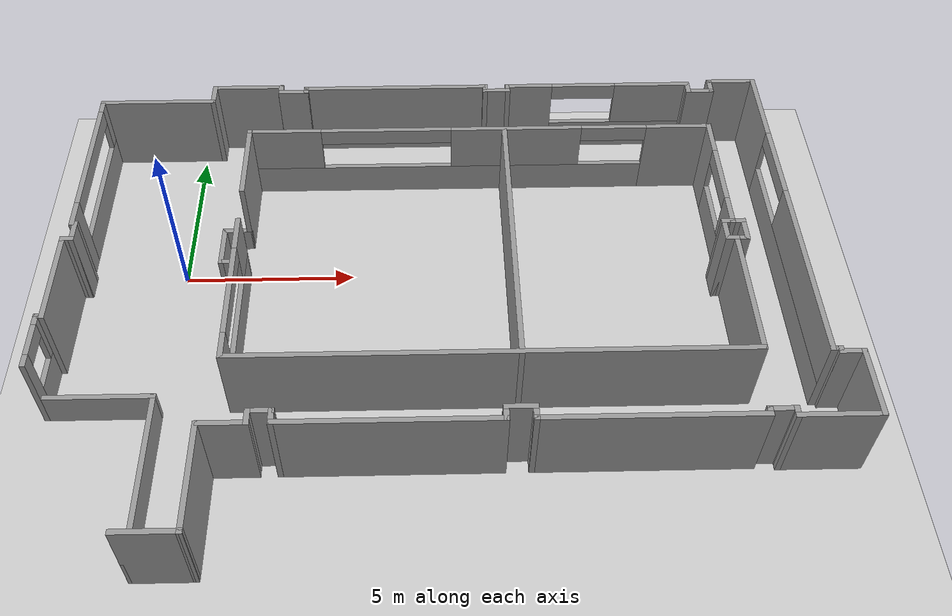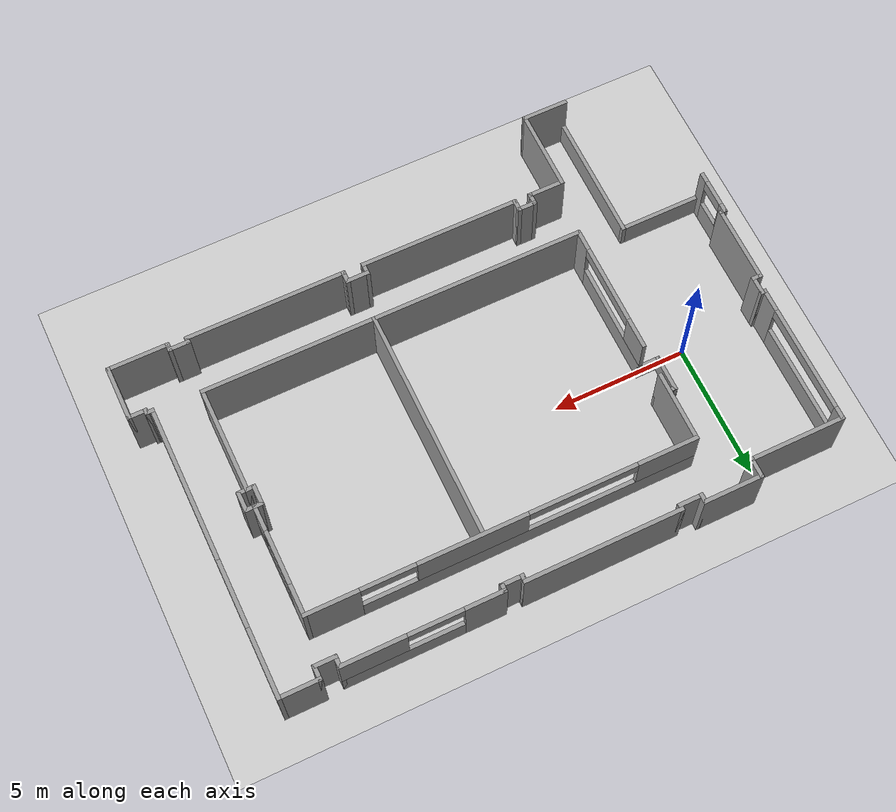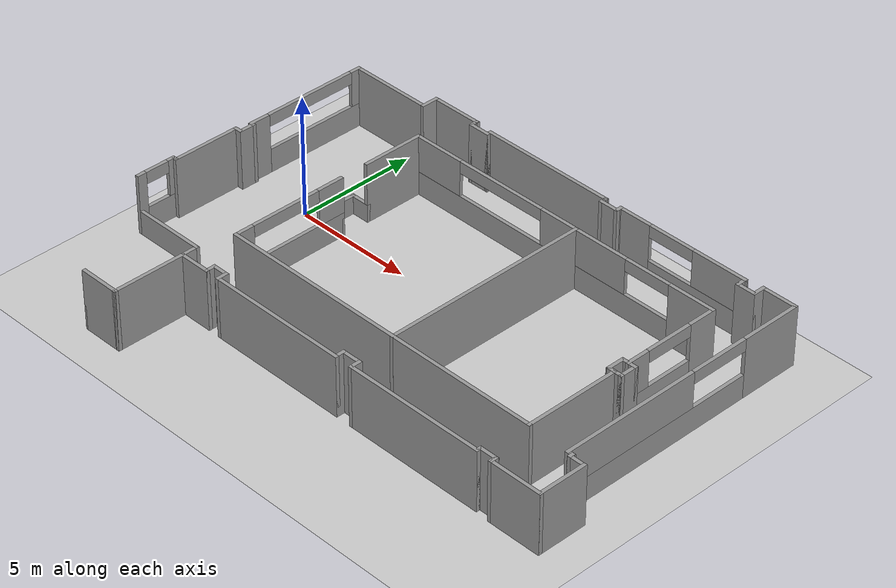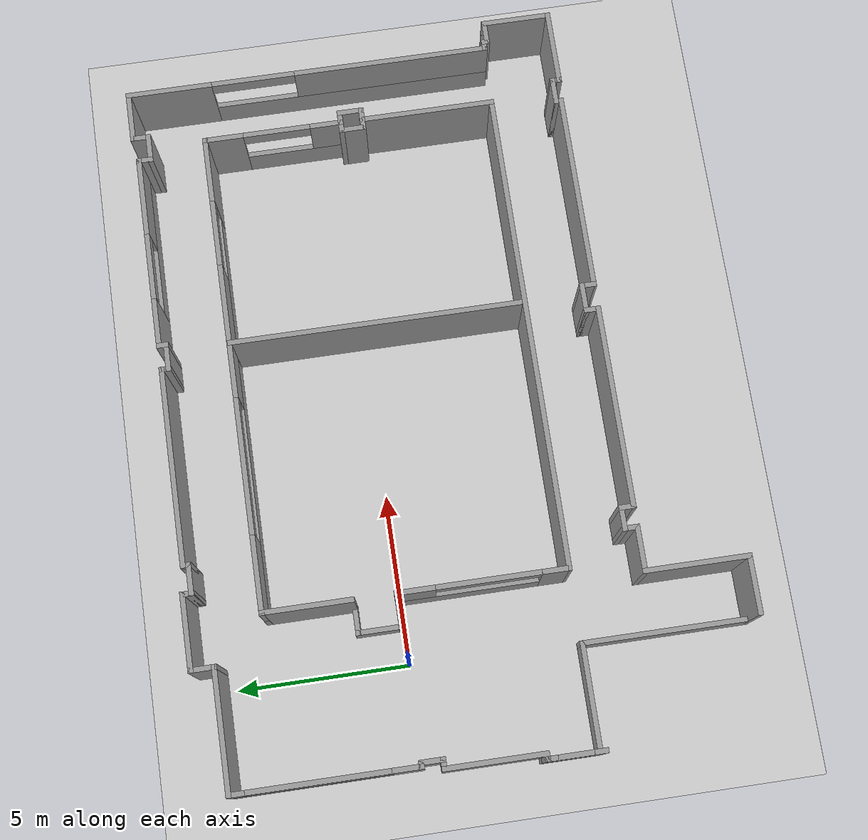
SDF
<sdf version="1.7">
 <world name="default">
  <light name="sun" type="directional">
   <pose>0 0 10 0 -0 0</pose>
   <diffuse>0.8 0.8 0.8 1</diffuse>
   <specular>0.2 0.2 0.2 1</specular>
   <attenuation>
    <range>1000</range>
    <constant>0.9</constant>
    <linear>0.01</linear>
    <quadratic>0.001</quadratic>
   </attenuation>
   <direction>-0.5 0.1 -0.9</direction>
   <spot><inner_angle>0</inner_angle><outer_angle>0</outer_angle><falloff>0</falloff></spot>
  </light>
  <model name="ground_plane">
   <static>1</static>
   <link name="link">
    <collision name="collision">
     <geometry><plane><normal>0 0 1</normal><size>100 100</size></plane></geometry>
     <surface>
      <contact><collide_bitmask>65535</collide_bitmask></contact>
      <friction><ode><mu>100</mu><mu2>50</mu2></ode></friction>
     </surface>
    </collision>
    <visual name="visual">
     <cast_shadows>0</cast_shadows>
     <geometry><plane><normal>0 0 1</normal><size>100 100</size></plane></geometry>
     <material>
      <script><uri>file://media/materials/scripts/gazebo.material</uri><name>Gazebo/Grey</name></script>
     </material>
    </visual>
   </link>
  </model>
  <gravity>0 0 -9.8</gravity>
  <magnetic_field>6e-06 2.3e-05 -4.2e-05</magnetic_field>
  <atmosphere type="adiabatic"/>
  <physics type="ode">
   <max_step_size>0.001</max_step_size>
   <real_time_factor>1</real_time_factor>
   <real_time_update_rate>1000</real_time_update_rate>
   <simbody><max_transient_velocity>0.0</max_transient_velocity></simbody>
  </physics>
  <scene><ambient>0.4 0.4 0.4 1</ambient><background>0.7 0.7 0.7 1</background><shadows>1</shadows></scene>
  <spherical_coordinates>
   <surface_model>EARTH_WGS84</surface_model>
   <latitude_deg>0</latitude_deg>
   <longitude_deg>0</longitude_deg>
   <elevation>0</elevation>
   <heading_deg>0</heading_deg>
  </spherical_coordinates>
  <model name="Meam_Closed_Doors">
   <pose>7.67766 -1.91407 0 0 -0 0</pose>
   <link name="Wall_101">
    <collision name="Wall_101_Collision">
     <geometry><box><size>0.4 0.15 2.5</size></box></geometry>
     <pose>0 0 1.25 0 -0 0</pose>
    </collision>
    <visual name="Wall_101_Visual">
     <pose>0 0 1.25 0 -0 0</pose>
     <geometry><box><size>0.4 0.15 2.5</size></box></geometry>
     <material>
      <script><uri>file://media/materials/scripts/gazebo.material</uri><name>Gazebo/Grey</name></script>
      <ambient>1 1 1 1</ambient>
     </material>
     <meta><layer>0</layer></meta>
    </visual>
    <pose>-10.6 1.37501 0 0 -0 0</pose>
   </link>
   <link name="Wall_103">
    <collision name="Wall_103_Collision">
     <geometry><box><size>0.75 0.15 2.5</size></box></geometry>
     <pose>0 0 1.25 0 -0 0</pose>
    </collision>
    <visual name="Wall_103_Visual">
     <pose>0 0 1.25 0 -0 0</pose>
     <geometry><box><size>0.75 0.15 2.5</size></box></geometry>
     <material>
      <script><uri>file://media/materials/scripts/gazebo.material</uri><name>Gazebo/Grey</name></script>
      <ambient>1 1 1 1</ambient>
     </material>
     <meta><layer>0</layer></meta>
    </visual>
    <pose>-10.475 1.67501 0 0 -0 1.5708</pose>
   </link>
   <link name="Wall_104">
    <collision name="Wall_104_Collision">
     <geometry><box><size>0.25 0.15 2.5</size></box></geometry>
     <pose>0 0 1.25 0 -0 0</pose>
    </collision>
    <visual name="Wall_104_Visual">
     <pose>0 0 1.25 0 -0 0</pose>
     <geometry><box><size>0.25 0.15 2.5</size></box></geometry>
     <material>
      <script><uri>file://media/materials/scripts/gazebo.material</uri><name>Gazebo/Grey</name></script>
      <ambient>1 1 1 1</ambient>
     </material>
     <meta><layer>0</layer></meta>
    </visual>
    <pose>-10.525 1.97501 0 0 -0 3.14159</pose>
   </link>
   <link name="Wall_126">
    <collision name="Wall_126_Collision">
     <geometry><box><size>0.25 0.15 2.5</size></box></geometry>
     <pose>0 0 1.25 0 -0 0</pose>
    </collision>
    <visual name="Wall_126_Visual">
     <pose>0 0 1.25 0 -0 0</pose>
     <geometry><box><size>0.25 0.15 2.5</size></box></geometry>
     <material>
      <script><uri>file://media/materials/scripts/gazebo.material</uri><name>Gazebo/Grey</name></script>
      <ambient>1 1 1 1</ambient>
     </material>
     <meta><layer>0</layer></meta>
    </visual>
    <pose>-10.525 1.97501 0 0 -0 3.14159</pose>
   </link>
   <link name="Wall_127">
    <pose>-10.575 4.60001 0 0 -0 1.5708</pose>
    <visual name="Wall_127_Visual_0">
     <pose>-2.25439 0 1.25 0 -0 0</pose>
     <geometry><box><size>0.891225 0.15 2.5</size></box></geometry>
     <material>
      <script><uri>file://media/materials/scripts/gazebo.material</uri><name>Gazebo/Grey</name></script>
      <ambient>1 1 1 1</ambient>
     </material>
     <meta><layer>0</layer></meta>
    </visual>
    <collision name="Wall_127_Collision_0">
     <geometry><box><size>0.891225 0.15 2.5</size></box></geometry>
     <pose>-2.25439 0 1.25 0 -0 0</pose>
    </collision>
    <visual name="Wall_127_Visual_1">
     <pose>0.445612 0 0.5 0 -0 0</pose>
     <geometry><box><size>4.50877 0.15 1</size></box></geometry>
     <material>
      <script><uri>file://media/materials/scripts/gazebo.material</uri><name>Gazebo/Grey</name></script>
      <ambient>1 1 1 1</ambient>
     </material>
     <meta><layer>0</layer></meta>
    </visual>
    <collision name="Wall_127_Collision_1">
     <geometry><box><size>4.50877 0.15 1</size></box></geometry>
     <pose>0.445612 0 0.5 0 -0 0</pose>
    </collision>
    <visual name="Wall_127_Visual_2">
     <pose>2.44561 0 1.75 0 -0 0</pose>
     <geometry><box><size>0.508775 0.15 1.5</size></box></geometry>
     <material>
      <script><uri>file://media/materials/scripts/gazebo.material</uri><name>Gazebo/Grey</name></script>
      <ambient>1 1 1 1</ambient>
     </material>
     <meta><layer>0</layer></meta>
    </visual>
    <collision name="Wall_127_Collision_2">
     <geometry><box><size>0.508775 0.15 1.5</size></box></geometry>
     <pose>2.44561 0 1.75 0 -0 0</pose>
    </collision>
    <visual name="Wall_127_Visual_3">
     <pose>0.191225 0 2.25 0 -0 0</pose>
     <geometry><box><size>4 0.15 0.5</size></box></geometry>
     <material>
      <script><uri>file://media/materials/scripts/gazebo.material</uri><name>Gazebo/Grey</name></script>
      <ambient>1 1 1 1</ambient>
     </material>
     <meta><layer>0</layer></meta>
    </visual>
    <collision name="Wall_127_Collision_3">
     <geometry><box><size>4 0.15 0.5</size></box></geometry>
     <pose>0.191225 0 2.25 0 -0 0</pose>
    </collision>
   </link>
   <link name="Wall_130">
    <collision name="Wall_130_Collision">
     <geometry><box><size>3.6 0.15 2.5</size></box></geometry>
     <pose>0 0 1.25 0 -0 0</pose>
    </collision>
    <visual name="Wall_130_Visual">
     <pose>0 0 1.25 0 -0 0</pose>
     <geometry><box><size>3.6 0.15 2.5</size></box></geometry>
     <material>
      <script><uri>file://media/materials/scripts/gazebo.material</uri><name>Gazebo/Grey</name></script>
      <ambient>1 1 1 1</ambient>
     </material>
     <meta><layer>0</layer></meta>
    </visual>
    <pose>-8.85 7.22501 0 0 -0 0</pose>
   </link>
   <link name="Wall_135">
    <collision name="Wall_135_Collision">
     <geometry><box><size>0.8 0.15 2.5</size></box></geometry>
     <pose>0 0 1.25 0 -0 0</pose>
    </collision>
    <visual name="Wall_135_Visual">
     <pose>0 0 1.25 0 -0 0</pose>
     <geometry><box><size>0.8 0.15 2.5</size></box></geometry>
     <material>
      <script><uri>file://media/materials/scripts/gazebo.material</uri><name>Gazebo/Grey</name></script>
      <ambient>1 1 1 1</ambient>
     </material>
     <meta><layer>0</layer></meta>
    </visual>
    <pose>-7.125 7.55 0 0 -0 1.5708</pose>
   </link>
   <link name="Wall_137">
    <collision name="Wall_137_Collision">
     <geometry><box><size>2.25 0.15 2.5</size></box></geometry>
     <pose>0 0 1.25 0 -0 0</pose>
    </collision>
    <visual name="Wall_137_Visual">
     <pose>0 0 1.25 0 -0 0</pose>
     <geometry><box><size>2.25 0.15 2.5</size></box></geometry>
     <material>
      <script><uri>file://media/materials/scripts/gazebo.material</uri><name>Gazebo/Grey</name></script>
      <ambient>1 1 1 1</ambient>
     </material>
     <meta><layer>0</layer></meta>
    </visual>
    <pose>-6.075 7.87501 0 0 -0 0</pose>
   </link>
   <link name="Wall_141">
    <collision name="Wall_141_Collision">
     <geometry><box><size>0.4 0.15 2.5</size></box></geometry>
     <pose>0 0 1.25 0 -0 0</pose>
    </collision>
    <visual name="Wall_141_Visual">
     <pose>0 0 1.25 0 -0 0</pose>
     <geometry><box><size>0.4 0.15 2.5</size></box></geometry>
     <material>
      <script><uri>file://media/materials/scripts/gazebo.material</uri><name>Gazebo/Grey</name></script>
      <ambient>1 1 1 1</ambient>
     </material>
     <meta><layer>0</layer></meta>
    </visual>
    <pose>-5.025 7.75001 0 0 -0 -1.5708</pose>
   </link>
   <link name="Wall_143">
    <collision name="Wall_143_Collision">
     <geometry><box><size>0.95 0.15 2.5</size></box></geometry>
     <pose>0 0 1.25 0 -0 0</pose>
    </collision>
    <visual name="Wall_143_Visual">
     <pose>0 0 1.25 0 -0 0</pose>
     <geometry><box><size>0.95 0.15 2.5</size></box></geometry>
     <material>
      <script><uri>file://media/materials/scripts/gazebo.material</uri><name>Gazebo/Grey</name></script>
      <ambient>1 1 1 1</ambient>
     </material>
     <meta><layer>0</layer></meta>
    </visual>
    <pose>-4.625 7.62501 0 0 -0 0</pose>
   </link>
   <link name="Wall_147">
    <collision name="Wall_147_Collision">
     <geometry><box><size>0.3 0.15 2.5</size></box></geometry>
     <pose>0 0 1.25 0 -0 0</pose>
    </collision>
    <visual name="Wall_147_Visual">
     <pose>0 0 1.25 0 -0 0</pose>
     <geometry><box><size>0.3 0.15 2.5</size></box></geometry>
     <material>
      <script><uri>file://media/materials/scripts/gazebo.material</uri><name>Gazebo/Grey</name></script>
      <ambient>1 1 1 1</ambient>
     </material>
     <meta><layer>0</layer></meta>
    </visual>
    <pose>-4.225 7.70001 0 0 -0 1.5708</pose>
   </link>
   <link name="Wall_151">
    <collision name="Wall_151_Collision">
     <geometry><box><size>0.3 0.15 2.5</size></box></geometry>
     <pose>0 0 1.25 0 -0 0</pose>
    </collision>
    <visual name="Wall_151_Visual">
     <pose>0 0 1.25 0 -0 0</pose>
     <geometry><box><size>0.3 0.15 2.5</size></box></geometry>
     <material>
      <script><uri>file://media/materials/scripts/gazebo.material</uri><name>Gazebo/Grey</name></script>
      <ambient>1 1 1 1</ambient>
     </material>
     <meta><layer>0</layer></meta>
    </visual>
    <pose>-4.225 7.70001 0 0 -0 1.5708</pose>
   </link>
   <link name="Wall_152">
    <collision name="Wall_152_Collision">
     <geometry><box><size>5.85 0.15 2.5</size></box></geometry>
     <pose>0 0 1.25 0 -0 0</pose>
    </collision>
    <visual name="Wall_152_Visual">
     <pose>0 0 1.25 0 -0 0</pose>
     <geometry><box><size>5.85 0.15 2.5</size></box></geometry>
     <material>
      <script><uri>file://media/materials/scripts/gazebo.material</uri><name>Gazebo/Grey</name></script>
      <ambient>1 1 1 1</ambient>
     </material>
     <meta><layer>0</layer></meta>
    </visual>
    <pose>-1.375 7.77501 0 0 -0 0</pose>
   </link>
   <link name="Wall_154">
    <collision name="Wall_154_Collision">
     <geometry><box><size>0.35 0.15 2.5</size></box></geometry>
     <pose>0 0 1.25 0 -0 0</pose>
    </collision>
    <visual name="Wall_154_Visual">
     <pose>0 0 1.25 0 -0 0</pose>
     <geometry><box><size>0.35 0.15 2.5</size></box></geometry>
     <material>
      <script><uri>file://media/materials/scripts/gazebo.material</uri><name>Gazebo/Grey</name></script>
      <ambient>1 1 1 1</ambient>
     </material>
     <meta><layer>0</layer></meta>
    </visual>
    <pose>1.475 7.675 0 0 -0 -1.5708</pose>
   </link>
   <link name="Wall_157">
    <collision name="Wall_157_Collision">
     <geometry><box><size>0.35 0.15 2.5</size></box></geometry>
     <pose>0 0 1.25 0 -0 0</pose>
    </collision>
    <visual name="Wall_157_Visual">
     <pose>0 0 1.25 0 -0 0</pose>
     <geometry><box><size>0.35 0.15 2.5</size></box></geometry>
     <material>
      <script><uri>file://media/materials/scripts/gazebo.material</uri><name>Gazebo/Grey</name></script>
      <ambient>1 1 1 1</ambient>
     </material>
     <meta><layer>0</layer></meta>
    </visual>
    <pose>1.475 7.675 0 0 -0 -1.5708</pose>
   </link>
   <link name="Wall_158">
    <collision name="Wall_158_Collision">
     <geometry><box><size>0.870393 0.15 2.5</size></box></geometry>
     <pose>0 0 1.25 0 -0 0</pose>
    </collision>
    <visual name="Wall_158_Visual">
     <pose>0 0 1.25 0 -0 0</pose>
     <geometry><box><size>0.870393 0.15 2.5</size></box></geometry>
     <material>
      <script><uri>file://media/materials/scripts/gazebo.material</uri><name>Gazebo/Grey</name></script>
      <ambient>1 1 1 1</ambient>
     </material>
     <meta><layer>0</layer></meta>
    </visual>
    <pose>1.8352 7.57501 0 0 -0 0</pose>
   </link>
   <link name="Wall_167">
    <collision name="Wall_167_Collision">
     <geometry><box><size>0.35 0.15 2.5</size></box></geometry>
     <pose>0 0 1.25 0 -0 0</pose>
    </collision>
    <visual name="Wall_167_Visual">
     <pose>0 0 1.25 0 -0 0</pose>
     <geometry><box><size>0.35 0.15 2.5</size></box></geometry>
     <material>
      <script><uri>file://media/materials/scripts/gazebo.material</uri><name>Gazebo/Grey</name></script>
      <ambient>1 1 1 1</ambient>
     </material>
     <meta><layer>0</layer></meta>
    </visual>
    <pose>2.19539 7.675 0 0 -0 1.5708</pose>
   </link>
   <link name="Wall_169">
    <collision name="Wall_169_Collision">
     <geometry><box><size>0.15 0.15 2.5</size></box></geometry>
     <pose>0 0 1.25 0 -0 0</pose>
    </collision>
    <visual name="Wall_169_Visual">
     <pose>0 0 1.25 0 -0 0</pose>
     <geometry><box><size>0.15 0.15 2.5</size></box></geometry>
     <material>
      <script><uri>file://media/materials/scripts/gazebo.material</uri><name>Gazebo/Grey</name></script>
      <ambient>1 1 1 1</ambient>
     </material>
     <meta><layer>0</layer></meta>
    </visual>
    <pose>2.19539 7.57501 0 0 -0 0</pose>
   </link>
   <link name="Wall_170">
    <collision name="Wall_170_Collision">
     <geometry><box><size>0.35 0.15 2.5</size></box></geometry>
     <pose>0 0 1.25 0 -0 0</pose>
    </collision>
    <visual name="Wall_170_Visual">
     <pose>0 0 1.25 0 -0 0</pose>
     <geometry><box><size>0.35 0.15 2.5</size></box></geometry>
     <material>
      <script><uri>file://media/materials/scripts/gazebo.material</uri><name>Gazebo/Grey</name></script>
      <ambient>1 1 1 1</ambient>
     </material>
     <meta><layer>0</layer></meta>
    </visual>
    <pose>2.19539 7.675 0 0 -0 1.5708</pose>
   </link>
   <link name="Wall_172">
    <collision name="Wall_172_Collision">
     <geometry><box><size>0.35 0.15 2.5</size></box></geometry>
     <pose>0 0 1.25 0 -0 0</pose>
    </collision>
    <visual name="Wall_172_Visual">
     <pose>0 0 1.25 0 -0 0</pose>
     <geometry><box><size>0.35 0.15 2.5</size></box></geometry>
     <material>
      <script><uri>file://media/materials/scripts/gazebo.material</uri><name>Gazebo/Grey</name></script>
      <ambient>1 1 1 1</ambient>
     </material>
     <meta><layer>0</layer></meta>
    </visual>
    <pose>2.19539 7.675 0 0 -0 1.5708</pose>
   </link>
   <link name="Wall_173">
    <pose>5.0704 7.77501 0 0 -0 0</pose>
    <visual name="Wall_173_Visual_0">
     <pose>-2.19873 0 1.25 0 -0 0</pose>
     <geometry><box><size>1.50254 0.15 2.5</size></box></geometry>
     <material>
      <script><uri>file://media/materials/scripts/gazebo.material</uri><name>Gazebo/Grey</name></script>
      <ambient>1 1 1 1</ambient>
     </material>
     <meta><layer>0</layer></meta>
    </visual>
    <collision name="Wall_173_Collision_0">
     <geometry><box><size>1.50254 0.15 2.5</size></box></geometry>
     <pose>-2.19873 0 1.25 0 -0 0</pose>
    </collision>
    <visual name="Wall_173_Visual_1">
     <pose>0.751268 0 0.5 0 -0 0</pose>
     <geometry><box><size>4.39746 0.15 1</size></box></geometry>
     <material>
      <script><uri>file://media/materials/scripts/gazebo.material</uri><name>Gazebo/Grey</name></script>
      <ambient>1 1 1 1</ambient>
     </material>
     <meta><layer>0</layer></meta>
    </visual>
    <collision name="Wall_173_Collision_1">
     <geometry><box><size>4.39746 0.15 1</size></box></geometry>
     <pose>0.751268 0 0.5 0 -0 0</pose>
    </collision>
    <visual name="Wall_173_Visual_2">
     <pose>1.75127 0 1.75 0 -0 0</pose>
     <geometry><box><size>2.39746 0.15 1.5</size></box></geometry>
     <material>
      <script><uri>file://media/materials/scripts/gazebo.material</uri><name>Gazebo/Grey</name></script>
      <ambient>1 1 1 1</ambient>
     </material>
     <meta><layer>0</layer></meta>
    </visual>
    <collision name="Wall_173_Collision_2">
     <geometry><box><size>2.39746 0.15 1.5</size></box></geometry>
     <pose>1.75127 0 1.75 0 -0 0</pose>
    </collision>
    <visual name="Wall_173_Visual_3">
     <pose>-0.447464 0 2.25 0 -0 0</pose>
     <geometry><box><size>2 0.15 0.5</size></box></geometry>
     <material>
      <script><uri>file://media/materials/scripts/gazebo.material</uri><name>Gazebo/Grey</name></script>
      <ambient>1 1 1 1</ambient>
     </material>
     <meta><layer>0</layer></meta>
    </visual>
    <collision name="Wall_173_Collision_3">
     <geometry><box><size>2 0.15 0.5</size></box></geometry>
     <pose>-0.447464 0 2.25 0 -0 0</pose>
    </collision>
   </link>
   <link name="Wall_175">
    <collision name="Wall_175_Collision">
     <geometry><box><size>0.5 0.15 2.5</size></box></geometry>
     <pose>0 0 1.25 0 -0 0</pose>
    </collision>
    <visual name="Wall_175_Visual">
     <pose>0 0 1.25 0 -0 0</pose>
     <geometry><box><size>0.5 0.15 2.5</size></box></geometry>
     <material>
      <script><uri>file://media/materials/scripts/gazebo.material</uri><name>Gazebo/Grey</name></script>
      <ambient>1 1 1 1</ambient>
     </material>
     <meta><layer>0</layer></meta>
    </visual>
    <pose>7.9454 7.60001 0 0 -0 -1.5708</pose>
   </link>
   <link name="Wall_176">
    <collision name="Wall_176_Collision">
     <geometry><box><size>0.875 0.15 2.5</size></box></geometry>
     <pose>0 0 1.25 0 -0 0</pose>
    </collision>
    <visual name="Wall_176_Visual">
     <pose>0 0 1.25 0 -0 0</pose>
     <geometry><box><size>0.875 0.15 2.5</size></box></geometry>
     <material>
      <script><uri>file://media/materials/scripts/gazebo.material</uri><name>Gazebo/Grey</name></script>
      <ambient>1 1 1 1</ambient>
     </material>
     <meta><layer>0</layer></meta>
    </visual>
    <pose>8.30789 7.425 0 0 -0 0</pose>
   </link>
   <link name="Wall_178">
    <collision name="Wall_178_Collision">
     <geometry><box><size>0.6 0.15 2.5</size></box></geometry>
     <pose>0 0 1.25 0 -0 0</pose>
    </collision>
    <visual name="Wall_178_Visual">
     <pose>0 0 1.25 0 -0 0</pose>
     <geometry><box><size>0.6 0.15 2.5</size></box></geometry>
     <material>
      <script><uri>file://media/materials/scripts/gazebo.material</uri><name>Gazebo/Grey</name></script>
      <ambient>1 1 1 1</ambient>
     </material>
     <meta><layer>0</layer></meta>
    </visual>
    <pose>8.67039 7.65001 0 0 -0 1.5708</pose>
   </link>
   <link name="Wall_180">
    <collision name="Wall_180_Collision">
     <geometry><box><size>1.55461 0.15 2.5</size></box></geometry>
     <pose>0 0 1.25 0 -0 0</pose>
    </collision>
    <visual name="Wall_180_Visual">
     <pose>0 0 1.25 0 -0 0</pose>
     <geometry><box><size>1.55461 0.15 2.5</size></box></geometry>
     <material>
      <script><uri>file://media/materials/scripts/gazebo.material</uri><name>Gazebo/Grey</name></script>
      <ambient>1 1 1 1</ambient>
     </material>
     <meta><layer>0</layer></meta>
    </visual>
    <pose>9.3727 7.87501 0 0 -0 0</pose>
   </link>
   <link name="Wall_184">
    <collision name="Wall_184_Collision">
     <geometry><box><size>0.35 0.15 2.5</size></box></geometry>
     <pose>0 0 1.25 0 -0 0</pose>
    </collision>
    <visual name="Wall_184_Visual">
     <pose>0 0 1.25 0 -0 0</pose>
     <geometry><box><size>0.35 0.15 2.5</size></box></geometry>
     <material>
      <script><uri>file://media/materials/scripts/gazebo.material</uri><name>Gazebo/Grey</name></script>
      <ambient>1 1 1 1</ambient>
     </material>
     <meta><layer>0</layer></meta>
    </visual>
    <pose>10.175 -2.92499 0 0 -0 0</pose>
   </link>
   <link name="Wall_186">
    <collision name="Wall_186_Collision">
     <geometry><box><size>0.35 0.15 2.5</size></box></geometry>
     <pose>0 0 1.25 0 -0 0</pose>
    </collision>
    <visual name="Wall_186_Visual">
     <pose>0 0 1.25 0 -0 0</pose>
     <geometry><box><size>0.35 0.15 2.5</size></box></geometry>
     <material>
      <script><uri>file://media/materials/scripts/gazebo.material</uri><name>Gazebo/Grey</name></script>
      <ambient>1 1 1 1</ambient>
     </material>
     <meta><layer>0</layer></meta>
    </visual>
    <pose>10.175 -2.92499 0 0 -0 0</pose>
   </link>
   <link name="Wall_187">
    <collision name="Wall_187_Collision">
     <geometry><box><size>0.25 0.15 2.5</size></box></geometry>
     <pose>0 0 1.25 0 -0 0</pose>
    </collision>
    <visual name="Wall_187_Visual">
     <pose>0 0 1.25 0 -0 0</pose>
     <geometry><box><size>0.25 0.15 2.5</size></box></geometry>
     <material>
      <script><uri>file://media/materials/scripts/gazebo.material</uri><name>Gazebo/Grey</name></script>
      <ambient>1 1 1 1</ambient>
     </material>
     <meta><layer>0</layer></meta>
    </visual>
    <pose>10.275 -2.97499 0 0 -0 -1.5708</pose>
   </link>
   <link name="Wall_188">
    <collision name="Wall_188_Collision">
     <geometry><box><size>0.75 0.15 2.5</size></box></geometry>
     <pose>0 0 1.25 0 -0 0</pose>
    </collision>
    <visual name="Wall_188_Visual">
     <pose>0 0 1.25 0 -0 0</pose>
     <geometry><box><size>0.75 0.15 2.5</size></box></geometry>
     <material>
      <script><uri>file://media/materials/scripts/gazebo.material</uri><name>Gazebo/Grey</name></script>
      <ambient>1 1 1 1</ambient>
     </material>
     <meta><layer>0</layer></meta>
    </visual>
    <pose>10.575 -3.02499 0 0 -0 0</pose>
   </link>
   <link name="Wall_190">
    <collision name="Wall_190_Collision">
     <geometry><box><size>2.1 0.15 2.5</size></box></geometry>
     <pose>0 0 1.25 0 -0 0</pose>
    </collision>
    <visual name="Wall_190_Visual">
     <pose>0 0 1.25 0 -0 0</pose>
     <geometry><box><size>2.1 0.15 2.5</size></box></geometry>
     <material>
      <script><uri>file://media/materials/scripts/gazebo.material</uri><name>Gazebo/Grey</name></script>
      <ambient>1 1 1 1</ambient>
     </material>
     <meta><layer>0</layer></meta>
    </visual>
    <pose>10.875 -3.99999 0 0 -0 -1.5708</pose>
   </link>
   <link name="Wall_192">
    <collision name="Wall_192_Collision">
     <geometry><box><size>2.3 0.15 2.5</size></box></geometry>
     <pose>0 0 1.25 0 -0 0</pose>
    </collision>
    <visual name="Wall_192_Visual">
     <pose>0 0 1.25 0 -0 0</pose>
     <geometry><box><size>2.3 0.15 2.5</size></box></geometry>
     <material>
      <script><uri>file://media/materials/scripts/gazebo.material</uri><name>Gazebo/Grey</name></script>
      <ambient>1 1 1 1</ambient>
     </material>
     <meta><layer>0</layer></meta>
    </visual>
    <pose>9.8 -4.97499 0 0 -0 3.14159</pose>
   </link>
   <link name="Wall_194">
    <collision name="Wall_194_Collision">
     <geometry><box><size>0.35 0.15 2.5</size></box></geometry>
     <pose>0 0 1.25 0 -0 0</pose>
    </collision>
    <visual name="Wall_194_Visual">
     <pose>0 0 1.25 0 -0 0</pose>
     <geometry><box><size>0.35 0.15 2.5</size></box></geometry>
     <material>
      <script><uri>file://media/materials/scripts/gazebo.material</uri><name>Gazebo/Grey</name></script>
      <ambient>1 1 1 1</ambient>
     </material>
     <meta><layer>0</layer></meta>
    </visual>
    <pose>8.725 -4.87499 0 0 -0 1.5708</pose>
   </link>
   <link name="Wall_196">
    <collision name="Wall_196_Collision">
     <geometry><box><size>0.35 0.15 2.5</size></box></geometry>
     <pose>0 0 1.25 0 -0 0</pose>
    </collision>
    <visual name="Wall_196_Visual">
     <pose>0 0 1.25 0 -0 0</pose>
     <geometry><box><size>0.35 0.15 2.5</size></box></geometry>
     <material>
      <script><uri>file://media/materials/scripts/gazebo.material</uri><name>Gazebo/Grey</name></script>
      <ambient>1 1 1 1</ambient>
     </material>
     <meta><layer>0</layer></meta>
    </visual>
    <pose>8.725 -4.87499 0 0 -0 1.5708</pose>
   </link>
   <link name="Wall_197">
    <collision name="Wall_197_Collision">
     <geometry><box><size>0.825 0.15 2.5</size></box></geometry>
     <pose>0 0 1.25 0 -0 0</pose>
    </collision>
    <visual name="Wall_197_Visual">
     <pose>0 0 1.25 0 -0 0</pose>
     <geometry><box><size>0.825 0.15 2.5</size></box></geometry>
     <material>
      <script><uri>file://media/materials/scripts/gazebo.material</uri><name>Gazebo/Grey</name></script>
      <ambient>1 1 1 1</ambient>
     </material>
     <meta><layer>0</layer></meta>
    </visual>
    <pose>8.3875 -4.77499 0 0 -0 3.14159</pose>
   </link>
   <link name="Wall_199">
    <collision name="Wall_199_Collision">
     <geometry><box><size>0.3 0.15 2.5</size></box></geometry>
     <pose>0 0 1.25 0 -0 0</pose>
    </collision>
    <visual name="Wall_199_Visual">
     <pose>0 0 1.25 0 -0 0</pose>
     <geometry><box><size>0.3 0.15 2.5</size></box></geometry>
     <material>
      <script><uri>file://media/materials/scripts/gazebo.material</uri><name>Gazebo/Grey</name></script>
      <ambient>1 1 1 1</ambient>
     </material>
     <meta><layer>0</layer></meta>
    </visual>
    <pose>8.05 -4.84999 0 0 -0 -1.5708</pose>
   </link>
   <link name="Wall_201">
    <collision name="Wall_201_Collision">
     <geometry><box><size>0.3 0.15 2.5</size></box></geometry>
     <pose>0 0 1.25 0 -0 0</pose>
    </collision>
    <visual name="Wall_201_Visual">
     <pose>0 0 1.25 0 -0 0</pose>
     <geometry><box><size>0.3 0.15 2.5</size></box></geometry>
     <material>
      <script><uri>file://media/materials/scripts/gazebo.material</uri><name>Gazebo/Grey</name></script>
      <ambient>1 1 1 1</ambient>
     </material>
     <meta><layer>0</layer></meta>
    </visual>
    <pose>8.05 -4.84999 0 0 -0 -1.5708</pose>
   </link>
   <link name="Wall_202">
    <collision name="Wall_202_Collision">
     <geometry><box><size>5.975 0.15 2.5</size></box></geometry>
     <pose>0 0 1.25 0 -0 0</pose>
    </collision>
    <visual name="Wall_202_Visual">
     <pose>0 0 1.25 0 -0 0</pose>
     <geometry><box><size>5.975 0.15 2.5</size></box></geometry>
     <material>
      <script><uri>file://media/materials/scripts/gazebo.material</uri><name>Gazebo/Grey</name></script>
      <ambient>1 1 1 1</ambient>
     </material>
     <meta><layer>0</layer></meta>
    </visual>
    <pose>5.1375 -4.92499 0 0 -0 3.14159</pose>
   </link>
   <link name="Wall_208">
    <collision name="Wall_208_Collision">
     <geometry><box><size>0.45 0.15 2.5</size></box></geometry>
     <pose>0 0 1.25 0 -0 0</pose>
    </collision>
    <visual name="Wall_208_Visual">
     <pose>0 0 1.25 0 -0 0</pose>
     <geometry><box><size>0.45 0.15 2.5</size></box></geometry>
     <material>
      <script><uri>file://media/materials/scripts/gazebo.material</uri><name>Gazebo/Grey</name></script>
      <ambient>1 1 1 1</ambient>
     </material>
     <meta><layer>0</layer></meta>
    </visual>
    <pose>8.45626 1.69691 0 0 -0 0</pose>
   </link>
   <link name="Wall_210">
    <collision name="Wall_210_Collision">
     <geometry><box><size>0.8 0.15 2.5</size></box></geometry>
     <pose>0 0 1.25 0 -0 0</pose>
    </collision>
    <visual name="Wall_210_Visual">
     <pose>0 0 1.25 0 -0 0</pose>
     <geometry><box><size>0.8 0.15 2.5</size></box></geometry>
     <material>
      <script><uri>file://media/materials/scripts/gazebo.material</uri><name>Gazebo/Grey</name></script>
      <ambient>1 1 1 1</ambient>
     </material>
     <meta><layer>0</layer></meta>
    </visual>
    <pose>8.60626 1.37191 0 0 -0 -1.5708</pose>
   </link>
   <link name="Wall_212">
    <collision name="Wall_212_Collision">
     <geometry><box><size>0.45 0.15 2.5</size></box></geometry>
     <pose>0 0 1.25 0 -0 0</pose>
    </collision>
    <visual name="Wall_212_Visual">
     <pose>0 0 1.25 0 -0 0</pose>
     <geometry><box><size>0.45 0.15 2.5</size></box></geometry>
     <material>
      <script><uri>file://media/materials/scripts/gazebo.material</uri><name>Gazebo/Grey</name></script>
      <ambient>1 1 1 1</ambient>
     </material>
     <meta><layer>0</layer></meta>
    </visual>
    <pose>8.45626 1.04691 0 0 -0 3.14159</pose>
   </link>
   <link name="Wall_214">
    <collision name="Wall_214_Collision">
     <geometry><box><size>4.05 0.15 2.5</size></box></geometry>
     <pose>0 0 1.25 0 -0 0</pose>
    </collision>
    <visual name="Wall_214_Visual">
     <pose>0 0 1.25 0 -0 0</pose>
     <geometry><box><size>4.05 0.15 2.5</size></box></geometry>
     <material>
      <script><uri>file://media/materials/scripts/gazebo.material</uri><name>Gazebo/Grey</name></script>
      <ambient>1 1 1 1</ambient>
     </material>
     <meta><layer>0</layer></meta>
    </visual>
    <pose>8.30626 -0.903093 0 0 -0 -1.5708</pose>
   </link>
   <link name="Wall_216">
    <collision name="Wall_216_Collision">
     <geometry><box><size>14.3 0.15 2.5</size></box></geometry>
     <pose>0 0 1.25 0 -0 0</pose>
    </collision>
    <visual name="Wall_216_Visual">
     <pose>0 0 1.25 0 -0 0</pose>
     <geometry><box><size>14.3 0.15 2.5</size></box></geometry>
     <material>
      <script><uri>file://media/materials/scripts/gazebo.material</uri><name>Gazebo/Grey</name></script>
      <ambient>1 1 1 1</ambient>
     </material>
     <meta><layer>0</layer></meta>
    </visual>
    <pose>1.23126 -2.85309 0 0 -0 3.14159</pose>
   </link>
   <link name="Wall_218">
    <pose>-5.84387 -0.427921 0 0 -0 1.57085</pose>
    <visual name="Wall_218_Visual_0">
     <pose>-2.08106 0 1.25 0 -0 0</pose>
     <geometry><box><size>0.837886 0.15 2.5</size></box></geometry>
     <material>
      <script><uri>file://media/materials/scripts/gazebo.material</uri><name>Gazebo/Grey</name></script>
      <ambient>1 1 1 1</ambient>
     </material>
     <meta><layer>0</layer></meta>
    </visual>
    <collision name="Wall_218_Collision_0">
     <geometry><box><size>0.837886 0.15 2.5</size></box></geometry>
     <pose>-2.08106 0 1.25 0 -0 0</pose>
    </collision>
    <visual name="Wall_218_Visual_1">
     <pose>0.418943 0 0.5 0 -0 0</pose>
     <geometry><box><size>4.16211 0.15 1</size></box></geometry>
     <material>
      <script><uri>file://media/materials/scripts/gazebo.material</uri><name>Gazebo/Grey</name></script>
      <ambient>1 1 1 1</ambient>
     </material>
     <meta><layer>0</layer></meta>
    </visual>
    <collision name="Wall_218_Collision_1">
     <geometry><box><size>4.16211 0.15 1</size></box></geometry>
     <pose>0.418943 0 0.5 0 -0 0</pose>
    </collision>
    <visual name="Wall_218_Visual_2">
     <pose>1.91894 0 1.75 0 -0 0</pose>
     <geometry><box><size>1.16211 0.15 1.5</size></box></geometry>
     <material>
      <script><uri>file://media/materials/scripts/gazebo.material</uri><name>Gazebo/Grey</name></script>
      <ambient>1 1 1 1</ambient>
     </material>
     <meta><layer>0</layer></meta>
    </visual>
    <collision name="Wall_218_Collision_2">
     <geometry><box><size>1.16211 0.15 1.5</size></box></geometry>
     <pose>1.91894 0 1.75 0 -0 0</pose>
    </collision>
    <visual name="Wall_218_Visual_3">
     <pose>-0.162114 0 2.25 0 -0 0</pose>
     <geometry><box><size>3 0.15 0.5</size></box></geometry>
     <material>
      <script><uri>file://media/materials/scripts/gazebo.material</uri><name>Gazebo/Grey</name></script>
      <ambient>1 1 1 1</ambient>
     </material>
     <meta><layer>0</layer></meta>
    </visual>
    <collision name="Wall_218_Collision_3">
     <geometry><box><size>3 0.15 0.5</size></box></geometry>
     <pose>-0.162114 0 2.25 0 -0 0</pose>
    </collision>
   </link>
   <link name="Wall_219">
    <collision name="Wall_219_Collision">
     <geometry><box><size>0.9 0.15 0.75</size></box></geometry>
     <pose>0 0 0.375 0 -0 0</pose>
    </collision>
    <visual name="Wall_219_Visual">
     <pose>0 0 0.375 0 -0 0</pose>
     <geometry><box><size>0.9 0.15 0.75</size></box></geometry>
     <material>
      <script><uri>file://media/materials/scripts/gazebo.material</uri><name>Gazebo/Grey</name></script>
      <ambient>1 1 1 1</ambient>
     </material>
     <meta><layer>0</layer></meta>
    </visual>
    <pose>-6.219 1.99725 0 0 -0 3.14159</pose>
   </link>
   <link name="Wall_221">
    <collision name="Wall_221_Collision">
     <geometry><box><size>1.4 0.15 0.75</size></box></geometry>
     <pose>0 0 0.375 0 -0 0</pose>
    </collision>
    <visual name="Wall_221_Visual">
     <pose>0 0 0.375 0 -0 0</pose>
     <geometry><box><size>1.4 0.15 0.75</size></box></geometry>
     <material>
      <script><uri>file://media/materials/scripts/gazebo.material</uri><name>Gazebo/Grey</name></script>
      <ambient>1 1 1 1</ambient>
     </material>
     <meta><layer>0</layer></meta>
    </visual>
    <pose>-6.594 2.62225 0 0 -0 1.5708</pose>
   </link>
   <link name="Wall_223">
    <collision name="Wall_223_Collision">
     <geometry><box><size>0.9 0.15 0.75</size></box></geometry>
     <pose>0 0 0.375 0 -0 0</pose>
    </collision>
    <visual name="Wall_223_Visual">
     <pose>0 0 0.375 0 -0 0</pose>
     <geometry><box><size>0.9 0.15 0.75</size></box></geometry>
     <material>
      <script><uri>file://media/materials/scripts/gazebo.material</uri><name>Gazebo/Grey</name></script>
      <ambient>1 1 1 1</ambient>
     </material>
     <meta><layer>0</layer></meta>
    </visual>
    <pose>-6.219 3.24725 0 0 -0 0</pose>
   </link>
   <link name="Wall_232">
    <collision name="Wall_232_Collision">
     <geometry><box><size>8.75 0.15 2.5</size></box></geometry>
     <pose>0 0 1.25 0 -0 0</pose>
    </collision>
    <visual name="Wall_232_Visual">
     <pose>0 0 1.25 0 -0 0</pose>
     <geometry><box><size>8.75 0.15 2.5</size></box></geometry>
     <material>
      <script><uri>file://media/materials/scripts/gazebo.material</uri><name>Gazebo/Grey</name></script>
      <ambient>1 1 1 1</ambient>
     </material>
     <meta><layer>0</layer></meta>
    </visual>
    <pose>1.98748 1.44602 0 0 -0 -1.5708</pose>
   </link>
   <link name="Wall_235">
    <collision name="Wall_235_Collision">
     <geometry><box><size>0.4 0.15 2.5</size></box></geometry>
     <pose>0 0 1.25 0 -0 0</pose>
    </collision>
    <visual name="Wall_235_Visual">
     <pose>0 0 1.25 0 -0 0</pose>
     <geometry><box><size>0.4 0.15 2.5</size></box></geometry>
     <material>
      <script><uri>file://media/materials/scripts/gazebo.material</uri><name>Gazebo/Grey</name></script>
      <ambient>1 1 1 1</ambient>
     </material>
     <meta><layer>0</layer></meta>
    </visual>
    <pose>8.18126 1.69691 0 0 -0 3.14159</pose>
   </link>
   <link name="Wall_239">
    <collision name="Wall_239_Collision">
     <geometry><box><size>0.8 0.15 2.5</size></box></geometry>
     <pose>0 0 1.25 0 -0 0</pose>
    </collision>
    <visual name="Wall_239_Visual">
     <pose>0 0 1.25 0 -0 0</pose>
     <geometry><box><size>0.8 0.15 2.5</size></box></geometry>
     <material>
      <script><uri>file://media/materials/scripts/gazebo.material</uri><name>Gazebo/Grey</name></script>
      <ambient>1 1 1 1</ambient>
     </material>
     <meta><layer>0</layer></meta>
    </visual>
    <pose>8.05626 1.37191 0 0 -0 -1.5708</pose>
   </link>
   <link name="Wall_241">
    <collision name="Wall_241_Collision">
     <geometry><box><size>0.4 0.15 2.5</size></box></geometry>
     <pose>0 0 1.25 0 -0 0</pose>
    </collision>
    <visual name="Wall_241_Visual">
     <pose>0 0 1.25 0 -0 0</pose>
     <geometry><box><size>0.4 0.15 2.5</size></box></geometry>
     <material>
      <script><uri>file://media/materials/scripts/gazebo.material</uri><name>Gazebo/Grey</name></script>
      <ambient>1 1 1 1</ambient>
     </material>
     <meta><layer>0</layer></meta>
    </visual>
    <pose>8.18126 1.04691 0 0 -0 0</pose>
   </link>
   <link name="Wall_245">
    <pose>8.30626 3.73082 0 0 -0 -1.5708</pose>
    <visual name="Wall_245_Visual_0">
     <pose>-1.50161 0 1.25 0 -0 0</pose>
     <geometry><box><size>1.21461 0.15 2.5</size></box></geometry>
     <material>
      <script><uri>file://media/materials/scripts/gazebo.material</uri><name>Gazebo/Grey</name></script>
      <ambient>1 1 1 1</ambient>
     </material>
     <meta><layer>0</layer></meta>
    </visual>
    <collision name="Wall_245_Collision_0">
     <geometry><box><size>1.21461 0.15 2.5</size></box></geometry>
     <pose>-1.50161 0 1.25 0 -0 0</pose>
    </collision>
    <visual name="Wall_245_Visual_1">
     <pose>0.607306 0 0.5 0 -0 0</pose>
     <geometry><box><size>3.00322 0.15 1</size></box></geometry>
     <material>
      <script><uri>file://media/materials/scripts/gazebo.material</uri><name>Gazebo/Grey</name></script>
      <ambient>1 1 1 1</ambient>
     </material>
     <meta><layer>0</layer></meta>
    </visual>
    <collision name="Wall_245_Collision_1">
     <geometry><box><size>3.00322 0.15 1</size></box></geometry>
     <pose>0.607306 0 0.5 0 -0 0</pose>
    </collision>
    <visual name="Wall_245_Visual_2">
     <pose>1.60731 0 1.75 0 -0 0</pose>
     <geometry><box><size>1.00322 0.15 1.5</size></box></geometry>
     <material>
      <script><uri>file://media/materials/scripts/gazebo.material</uri><name>Gazebo/Grey</name></script>
      <ambient>1 1 1 1</ambient>
     </material>
     <meta><layer>0</layer></meta>
    </visual>
    <collision name="Wall_245_Collision_2">
     <geometry><box><size>1.00322 0.15 1.5</size></box></geometry>
     <pose>1.60731 0 1.75 0 -0 0</pose>
    </collision>
    <visual name="Wall_245_Visual_3">
     <pose>0.105695 0 2.25 0 -0 0</pose>
     <geometry><box><size>2 0.15 0.5</size></box></geometry>
     <material>
      <script><uri>file://media/materials/scripts/gazebo.material</uri><name>Gazebo/Grey</name></script>
      <ambient>1 1 1 1</ambient>
     </material>
     <meta><layer>0</layer></meta>
    </visual>
    <collision name="Wall_245_Collision_3">
     <geometry><box><size>2 0.15 0.5</size></box></geometry>
     <pose>0.105695 0 2.25 0 -0 0</pose>
    </collision>
   </link>
   <link name="Wall_248">
    <pose>1.23126 5.76474 0 0 -0 3.14159</pose>
    <visual name="Wall_248_Visual_0">
     <pose>-6.14509 0 1.25 0 -0 0</pose>
     <geometry><box><size>2.00982 0.15 2.5</size></box></geometry>
     <material>
      <script><uri>file://media/materials/scripts/gazebo.material</uri><name>Gazebo/Grey</name></script>
      <ambient>1 1 1 1</ambient>
     </material>
     <meta><layer>0</layer></meta>
    </visual>
    <collision name="Wall_248_Collision_0">
     <geometry><box><size>2.00982 0.15 2.5</size></box></geometry>
     <pose>-6.14509 0 1.25 0 -0 0</pose>
    </collision>
    <visual name="Wall_248_Visual_1">
     <pose>1.00491 0 0.5 0 -0 0</pose>
     <geometry><box><size>12.2902 0.15 1</size></box></geometry>
     <material>
      <script><uri>file://media/materials/scripts/gazebo.material</uri><name>Gazebo/Grey</name></script>
      <ambient>1 1 1 1</ambient>
     </material>
     <meta><layer>0</layer></meta>
    </visual>
    <collision name="Wall_248_Collision_1">
     <geometry><box><size>12.2902 0.15 1</size></box></geometry>
     <pose>1.00491 0 0.5 0 -0 0</pose>
    </collision>
    <visual name="Wall_248_Visual_2">
     <pose>-1.12762 0 1.75 0 -0 0</pose>
     <geometry><box><size>4.02511 0.15 1.5</size></box></geometry>
     <material>
      <script><uri>file://media/materials/scripts/gazebo.material</uri><name>Gazebo/Grey</name></script>
      <ambient>1 1 1 1</ambient>
     </material>
     <meta><layer>0</layer></meta>
    </visual>
    <collision name="Wall_248_Collision_2">
     <geometry><box><size>4.02511 0.15 1.5</size></box></geometry>
     <pose>-1.12762 0 1.75 0 -0 0</pose>
    </collision>
    <visual name="Wall_248_Visual_3">
     <pose>6.01747 0 1.75 0 -0 0</pose>
     <geometry><box><size>2.26507 0.15 1.5</size></box></geometry>
     <material>
      <script><uri>file://media/materials/scripts/gazebo.material</uri><name>Gazebo/Grey</name></script>
      <ambient>1 1 1 1</ambient>
     </material>
     <meta><layer>0</layer></meta>
    </visual>
    <collision name="Wall_248_Collision_3">
     <geometry><box><size>2.26507 0.15 1.5</size></box></geometry>
     <pose>6.01747 0 1.75 0 -0 0</pose>
    </collision>
    <visual name="Wall_248_Visual_4">
     <pose>-4.14018 0 2.25 0 -0 0</pose>
     <geometry><box><size>2 0.15 0.5</size></box></geometry>
     <material>
      <script><uri>file://media/materials/scripts/gazebo.material</uri><name>Gazebo/Grey</name></script>
      <ambient>1 1 1 1</ambient>
     </material>
     <meta><layer>0</layer></meta>
    </visual>
    <collision name="Wall_248_Collision_4">
     <geometry><box><size>2 0.15 0.5</size></box></geometry>
     <pose>-4.14018 0 2.25 0 -0 0</pose>
    </collision>
    <visual name="Wall_248_Visual_5">
     <pose>2.88493 0 2.25 0 -0 0</pose>
     <geometry><box><size>4 0.15 0.5</size></box></geometry>
     <material>
      <script><uri>file://media/materials/scripts/gazebo.material</uri><name>Gazebo/Grey</name></script>
      <ambient>1 1 1 1</ambient>
     </material>
     <meta><layer>0</layer></meta>
    </visual>
    <collision name="Wall_248_Collision_5">
     <geometry><box><size>4 0.15 0.5</size></box></geometry>
     <pose>2.88493 0 2.25 0 -0 0</pose>
    </collision>
   </link>
   <link name="Wall_250">
    <collision name="Wall_250_Collision">
     <geometry><box><size>2.66749 0.15 2.5</size></box></geometry>
     <pose>0 0 1.25 0 -0 0</pose>
    </collision>
    <visual name="Wall_250_Visual">
     <pose>0 0 1.25 0 -0 0</pose>
     <geometry><box><size>2.66749 0.15 2.5</size></box></geometry>
     <material>
      <script><uri>file://media/materials/scripts/gazebo.material</uri><name>Gazebo/Grey</name></script>
      <ambient>1 1 1 1</ambient>
     </material>
     <meta><layer>0</layer></meta>
    </visual>
    <pose>-5.84387 4.506 0 0 -0 1.57069</pose>
   </link>
   <link name="Wall_48">
    <pose>10.075 2.47501 0 0 -0 -1.5708</pose>
    <visual name="Wall_48_Visual_0">
     <pose>-4.18675 0 1.25 0 -0 0</pose>
     <geometry><box><size>2.57651 0.15 2.5</size></box></geometry>
     <material>
      <script><uri>file://media/materials/scripts/gazebo.material</uri><name>Gazebo/Grey</name></script>
      <ambient>1 1 1 1</ambient>
     </material>
     <meta><layer>0</layer></meta>
    </visual>
    <collision name="Wall_48_Collision_0">
     <geometry><box><size>2.57651 0.15 2.5</size></box></geometry>
     <pose>-4.18675 0 1.25 0 -0 0</pose>
    </collision>
    <visual name="Wall_48_Visual_1">
     <pose>1.28825 0 0.5 0 -0 0</pose>
     <geometry><box><size>8.3735 0.15 1</size></box></geometry>
     <material>
      <script><uri>file://media/materials/scripts/gazebo.material</uri><name>Gazebo/Grey</name></script>
      <ambient>1 1 1 1</ambient>
     </material>
     <meta><layer>0</layer></meta>
    </visual>
    <collision name="Wall_48_Collision_1">
     <geometry><box><size>8.3735 0.15 1</size></box></geometry>
     <pose>1.28825 0 0.5 0 -0 0</pose>
    </collision>
    <visual name="Wall_48_Visual_2">
     <pose>2.53825 0 1.75 0 -0 0</pose>
     <geometry><box><size>5.8735 0.15 1.5</size></box></geometry>
     <material>
      <script><uri>file://media/materials/scripts/gazebo.material</uri><name>Gazebo/Grey</name></script>
      <ambient>1 1 1 1</ambient>
     </material>
     <meta><layer>0</layer></meta>
    </visual>
    <collision name="Wall_48_Collision_2">
     <geometry><box><size>5.8735 0.15 1.5</size></box></geometry>
     <pose>2.53825 0 1.75 0 -0 0</pose>
    </collision>
    <visual name="Wall_48_Visual_3">
     <pose>-1.6485 0 2.25 0 -0 0</pose>
     <geometry><box><size>2.5 0.15 0.5</size></box></geometry>
     <material>
      <script><uri>file://media/materials/scripts/gazebo.material</uri><name>Gazebo/Grey</name></script>
      <ambient>1 1 1 1</ambient>
     </material>
     <meta><layer>0</layer></meta>
    </visual>
    <collision name="Wall_48_Collision_3">
     <geometry><box><size>2.5 0.15 0.5</size></box></geometry>
     <pose>-1.6485 0 2.25 0 -0 0</pose>
    </collision>
   </link>
   <link name="Wall_71">
    <collision name="Wall_71_Collision">
     <geometry><box><size>0.5 0.15 2.5</size></box></geometry>
     <pose>0 0 1.25 0 -0 0</pose>
    </collision>
    <visual name="Wall_71_Visual">
     <pose>0 0 1.25 0 -0 0</pose>
     <geometry><box><size>0.5 0.15 2.5</size></box></geometry>
     <material>
      <script><uri>file://media/materials/scripts/gazebo.material</uri><name>Gazebo/Grey</name></script>
      <ambient>1 1 1 1</ambient>
     </material>
     <meta><layer>0</layer></meta>
    </visual>
    <pose>2.225 -4.74999 0 0 -0 1.5708</pose>
   </link>
   <link name="Wall_72">
    <collision name="Wall_72_Collision">
     <geometry><box><size>0.9 0.15 2.5</size></box></geometry>
     <pose>0 0 1.25 0 -0 0</pose>
    </collision>
    <visual name="Wall_72_Visual">
     <pose>0 0 1.25 0 -0 0</pose>
     <geometry><box><size>0.9 0.15 2.5</size></box></geometry>
     <material>
      <script><uri>file://media/materials/scripts/gazebo.material</uri><name>Gazebo/Grey</name></script>
      <ambient>1 1 1 1</ambient>
     </material>
     <meta><layer>0</layer></meta>
    </visual>
    <pose>1.85 -4.575 0 0 -0 3.14159</pose>
   </link>
   <link name="Wall_74">
    <collision name="Wall_74_Collision">
     <geometry><box><size>0.5 0.15 2.5</size></box></geometry>
     <pose>0 0 1.25 0 -0 0</pose>
    </collision>
    <visual name="Wall_74_Visual">
     <pose>0 0 1.25 0 -0 0</pose>
     <geometry><box><size>0.5 0.15 2.5</size></box></geometry>
     <material>
      <script><uri>file://media/materials/scripts/gazebo.material</uri><name>Gazebo/Grey</name></script>
      <ambient>1 1 1 1</ambient>
     </material>
     <meta><layer>0</layer></meta>
    </visual>
    <pose>1.475 -4.74999 0 0 -0 -1.5708</pose>
   </link>
   <link name="Wall_75">
    <collision name="Wall_75_Collision">
     <geometry><box><size>6 0.15 2.5</size></box></geometry>
     <pose>0 0 1.25 0 -0 0</pose>
    </collision>
    <visual name="Wall_75_Visual">
     <pose>0 0 1.25 0 -0 0</pose>
     <geometry><box><size>6 0.15 2.5</size></box></geometry>
     <material>
      <script><uri>file://media/materials/scripts/gazebo.material</uri><name>Gazebo/Grey</name></script>
      <ambient>1 1 1 1</ambient>
     </material>
     <meta><layer>0</layer></meta>
    </visual>
    <pose>-1.45 -4.92499 0 0 -0 3.14159</pose>
   </link>
   <link name="Wall_76">
    <collision name="Wall_76_Collision">
     <geometry><box><size>0.5 0.15 2.5</size></box></geometry>
     <pose>0 0 1.25 0 -0 0</pose>
    </collision>
    <visual name="Wall_76_Visual">
     <pose>0 0 1.25 0 -0 0</pose>
     <geometry><box><size>0.5 0.15 2.5</size></box></geometry>
     <material>
      <script><uri>file://media/materials/scripts/gazebo.material</uri><name>Gazebo/Grey</name></script>
      <ambient>1 1 1 1</ambient>
     </material>
     <meta><layer>0</layer></meta>
    </visual>
    <pose>-4.375 -4.74999 0 0 -0 1.5708</pose>
   </link>
   <link name="Wall_77">
    <collision name="Wall_77_Collision">
     <geometry><box><size>0.75 0.15 2.5</size></box></geometry>
     <pose>0 0 1.25 0 -0 0</pose>
    </collision>
    <visual name="Wall_77_Visual">
     <pose>0 0 1.25 0 -0 0</pose>
     <geometry><box><size>0.75 0.15 2.5</size></box></geometry>
     <material>
      <script><uri>file://media/materials/scripts/gazebo.material</uri><name>Gazebo/Grey</name></script>
      <ambient>1 1 1 1</ambient>
     </material>
     <meta><layer>0</layer></meta>
    </visual>
    <pose>-4.675 -4.575 0 0 -0 3.14159</pose>
   </link>
   <link name="Wall_78">
    <collision name="Wall_78_Collision">
     <geometry><box><size>0.5 0.15 2.5</size></box></geometry>
     <pose>0 0 1.25 0 -0 0</pose>
    </collision>
    <visual name="Wall_78_Visual">
     <pose>0 0 1.25 0 -0 0</pose>
     <geometry><box><size>0.5 0.15 2.5</size></box></geometry>
     <material>
      <script><uri>file://media/materials/scripts/gazebo.material</uri><name>Gazebo/Grey</name></script>
      <ambient>1 1 1 1</ambient>
     </material>
     <meta><layer>0</layer></meta>
    </visual>
    <pose>-4.975 -4.74999 0 0 -0 -1.5708</pose>
   </link>
   <link name="Wall_79">
    <collision name="Wall_79_Collision">
     <geometry><box><size>1.4 0.15 2.5</size></box></geometry>
     <pose>0 0 1.25 0 -0 0</pose>
    </collision>
    <visual name="Wall_79_Visual">
     <pose>0 0 1.25 0 -0 0</pose>
     <geometry><box><size>1.4 0.15 2.5</size></box></geometry>
     <material>
      <script><uri>file://media/materials/scripts/gazebo.material</uri><name>Gazebo/Grey</name></script>
      <ambient>1 1 1 1</ambient>
     </material>
     <meta><layer>0</layer></meta>
    </visual>
    <pose>-5.6 -4.92499 0 0 -0 3.14159</pose>
   </link>
   <link name="Wall_81">
    <collision name="Wall_81_Collision">
     <geometry><box><size>3.1 0.15 2.5</size></box></geometry>
     <pose>0 0 1.25 0 -0 0</pose>
    </collision>
    <visual name="Wall_81_Visual">
     <pose>0 0 1.25 0 -0 0</pose>
     <geometry><box><size>3.1 0.15 2.5</size></box></geometry>
     <material>
      <script><uri>file://media/materials/scripts/gazebo.material</uri><name>Gazebo/Grey</name></script>
      <ambient>1 1 1 1</ambient>
     </material>
     <meta><layer>0</layer></meta>
    </visual>
    <pose>-6.225 -6.39999 0 0 -0 -1.5708</pose>
   </link>
   <link name="Wall_83">
    <collision name="Wall_83_Collision">
     <geometry><box><size>1.75 0.15 2.5</size></box></geometry>
     <pose>0 0 1.25 0 -0 0</pose>
    </collision>
    <visual name="Wall_83_Visual">
     <pose>0 0 1.25 0 -0 0</pose>
     <geometry><box><size>1.75 0.15 2.5</size></box></geometry>
     <material>
      <script><uri>file://media/materials/scripts/gazebo.material</uri><name>Gazebo/Grey</name></script>
      <ambient>1 1 1 1</ambient>
     </material>
     <meta><layer>0</layer></meta>
    </visual>
    <pose>-7.025 -7.87487 0 0 -0 3.14144</pose>
   </link>
   <link name="Wall_84">
    <collision name="Wall_84_Collision">
     <geometry><box><size>5 0.15 1</size></box></geometry>
     <pose>0 0 0.5 0 -0 0</pose>
    </collision>
    <visual name="Wall_84_Visual">
     <pose>0 0 0.5 0 -0 0</pose>
     <geometry><box><size>5 0.15 1</size></box></geometry>
     <material>
      <script><uri>file://media/materials/scripts/gazebo.material</uri><name>Gazebo/Grey</name></script>
      <ambient>1 1 1 1</ambient>
     </material>
     <meta><layer>0</layer></meta>
    </visual>
    <pose>-7.825 -5.44975 0 0 -0 1.5708</pose>
   </link>
   <link name="Wall_85">
    <collision name="Wall_85_Collision">
     <geometry><box><size>3.2 0.15 1</size></box></geometry>
     <pose>0 0 0.5 0 -0 0</pose>
    </collision>
    <visual name="Wall_85_Visual">
     <pose>0 0 0.5 0 -0 0</pose>
     <geometry><box><size>3.2 0.15 1</size></box></geometry>
     <material>
      <script><uri>file://media/materials/scripts/gazebo.material</uri><name>Gazebo/Grey</name></script>
      <ambient>1 1 1 1</ambient>
     </material>
     <meta><layer>0</layer></meta>
    </visual>
    <pose>-9.35 -3.02475 0 0 -0 3.14159</pose>
   </link>
   <link name="Wall_87">
    <pose>-10.875 -2.22487 0 0 -0 1.57079</pose>
    <visual name="Wall_87_Visual_0">
     <pose>-0.680373 0 1.25 0 -0 0</pose>
     <geometry><box><size>0.389253 0.15 2.5</size></box></geometry>
     <material>
      <script><uri>file://media/materials/scripts/gazebo.material</uri><name>Gazebo/Grey</name></script>
      <ambient>1 1 1 1</ambient>
     </material>
     <meta><layer>0</layer></meta>
    </visual>
    <collision name="Wall_87_Collision_0">
     <geometry><box><size>0.389253 0.15 2.5</size></box></geometry>
     <pose>-0.680373 0 1.25 0 -0 0</pose>
    </collision>
    <visual name="Wall_87_Visual_1">
     <pose>0.194627 0 0.5 0 -0 0</pose>
     <geometry><box><size>1.36075 0.15 1</size></box></geometry>
     <material>
      <script><uri>file://media/materials/scripts/gazebo.material</uri><name>Gazebo/Grey</name></script>
      <ambient>1 1 1 1</ambient>
     </material>
     <meta><layer>0</layer></meta>
    </visual>
    <collision name="Wall_87_Collision_1">
     <geometry><box><size>1.36075 0.15 1</size></box></geometry>
     <pose>0.194627 0 0.5 0 -0 0</pose>
    </collision>
    <visual name="Wall_87_Visual_2">
     <pose>0.694627 0 1.75 0 -0 0</pose>
     <geometry><box><size>0.360747 0.15 1.5</size></box></geometry>
     <material>
      <script><uri>file://media/materials/scripts/gazebo.material</uri><name>Gazebo/Grey</name></script>
      <ambient>1 1 1 1</ambient>
     </material>
     <meta><layer>0</layer></meta>
    </visual>
    <collision name="Wall_87_Collision_2">
     <geometry><box><size>0.360747 0.15 1.5</size></box></geometry>
     <pose>0.694627 0 1.75 0 -0 0</pose>
    </collision>
    <visual name="Wall_87_Visual_3">
     <pose>0.014253 0 2.25 0 -0 0</pose>
     <geometry><box><size>1 0.15 0.5</size></box></geometry>
     <material>
      <script><uri>file://media/materials/scripts/gazebo.material</uri><name>Gazebo/Grey</name></script>
      <ambient>1 1 1 1</ambient>
     </material>
     <meta><layer>0</layer></meta>
    </visual>
    <collision name="Wall_87_Collision_3">
     <geometry><box><size>1 0.15 0.5</size></box></geometry>
     <pose>0.014253 0 2.25 0 -0 0</pose>
    </collision>
   </link>
   <link name="Wall_89">
    <collision name="Wall_89_Collision">
     <geometry><box><size>0.2 0.15 2.5</size></box></geometry>
     <pose>0 0 1.25 0 -0 0</pose>
    </collision>
    <visual name="Wall_89_Visual">
     <pose>0 0 1.25 0 -0 0</pose>
     <geometry><box><size>0.2 0.15 2.5</size></box></geometry>
     <material>
      <script><uri>file://media/materials/scripts/gazebo.material</uri><name>Gazebo/Grey</name></script>
      <ambient>1 1 1 1</ambient>
     </material>
     <meta><layer>0</layer></meta>
    </visual>
    <pose>-10.85 -1.42499 0 0 -0 0</pose>
   </link>
   <link name="Wall_91">
    <collision name="Wall_91_Collision">
     <geometry><box><size>0.3 0.15 2.5</size></box></geometry>
     <pose>0 0 1.25 0 -0 0</pose>
    </collision>
    <visual name="Wall_91_Visual">
     <pose>0 0 1.25 0 -0 0</pose>
     <geometry><box><size>0.3 0.15 2.5</size></box></geometry>
     <material>
      <script><uri>file://media/materials/scripts/gazebo.material</uri><name>Gazebo/Grey</name></script>
      <ambient>1 1 1 1</ambient>
     </material>
     <meta><layer>0</layer></meta>
    </visual>
    <pose>-10.8 -1.42499 0 0 -0 0</pose>
   </link>
   <link name="Wall_99">
    <collision name="Wall_99_Collision">
     <geometry><box><size>2.95 0.15 2.5</size></box></geometry>
     <pose>0 0 1.25 0 -0 0</pose>
    </collision>
    <visual name="Wall_99_Visual">
     <pose>0 0 1.25 0 -0 0</pose>
     <geometry><box><size>2.95 0.15 2.5</size></box></geometry>
     <material>
      <script><uri>file://media/materials/scripts/gazebo.material</uri><name>Gazebo/Grey</name></script>
      <ambient>1 1 1 1</ambient>
     </material>
     <meta><layer>0</layer></meta>
    </visual>
    <pose>-10.725 -0.024994 0 0 -0 1.5708</pose>
   </link>
   <static>1</static>
  </model>
 </world>
</sdf>
